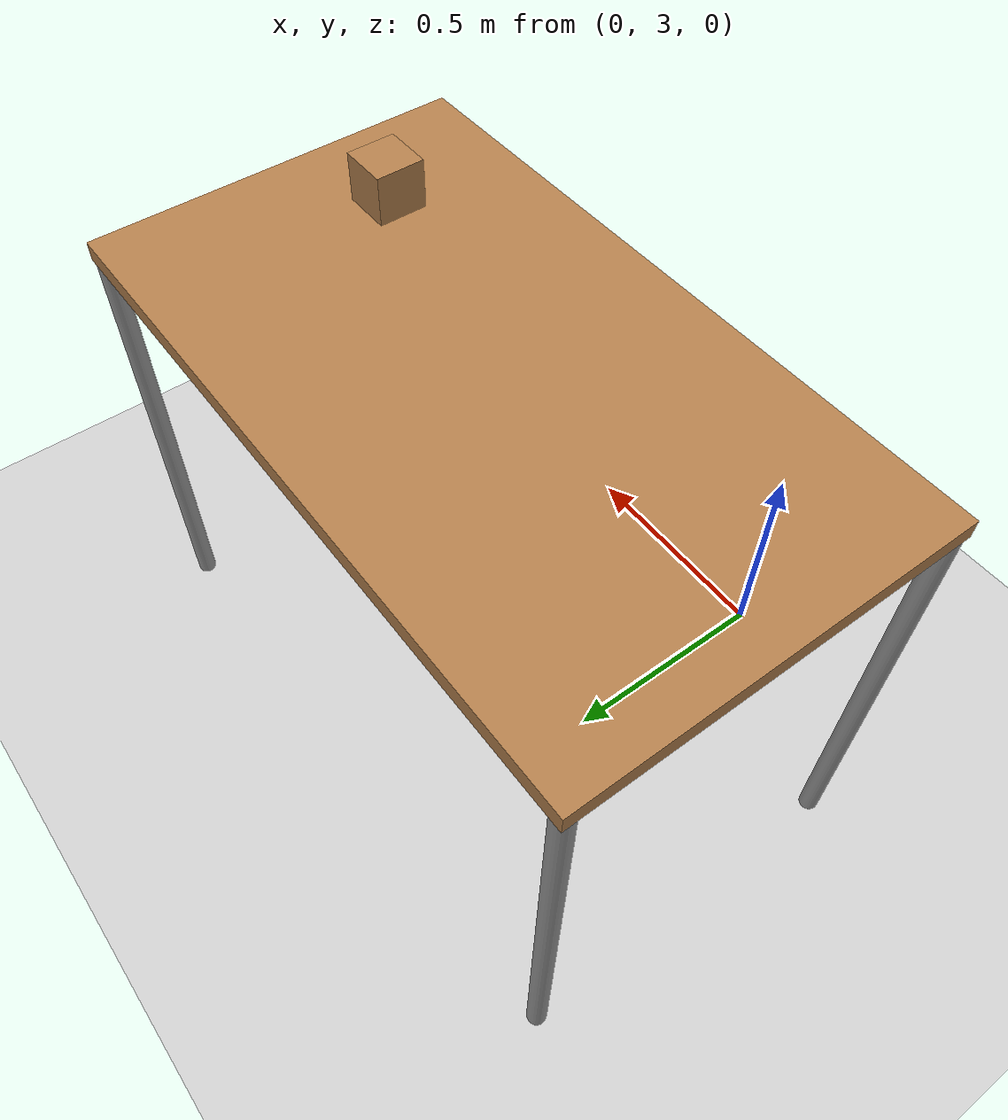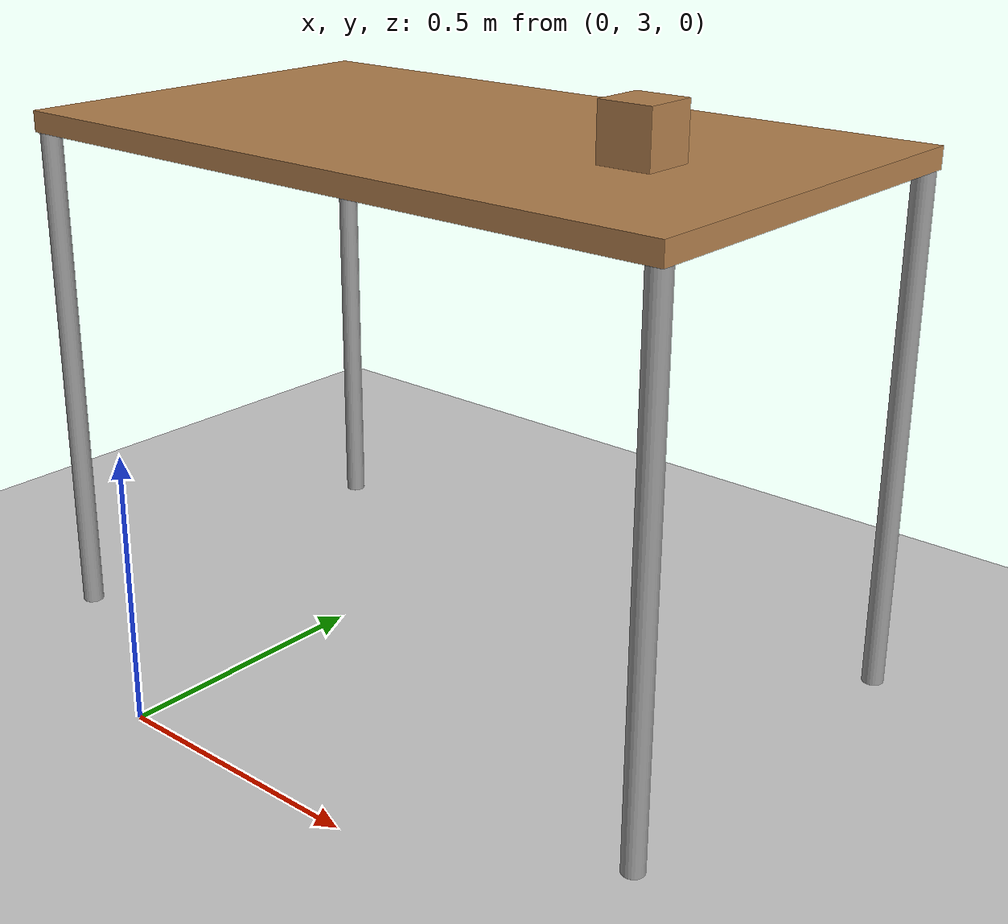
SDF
<sdf version="1.6">
 <world name="default">
  <light name="sun" type="directional">
   <pose>0 0 10 0 -0 0</pose>
   <diffuse>0.8 0.8 0.8 1</diffuse>
   <specular>0.1 0.1 0.1 1</specular>
   <attenuation>
    <range>1000</range>
    <constant>0.9</constant>
    <linear>0.01</linear>
    <quadratic>0.001</quadratic>
   </attenuation>
   <direction>-0.5 0.5 -1</direction>
  </light>
  <model name="ground_plane">
   <static>1</static>
   <link name="link">
    <collision name="collision">
     <geometry><plane><normal>0 0 1</normal><size>100 100</size></plane></geometry>
     <surface><friction><ode><mu>100</mu><mu2>50</mu2></ode></friction></surface>
    </collision>
    <visual name="visual">
     <cast_shadows>0</cast_shadows>
     <geometry><plane><normal>0 0 1</normal><size>100 100</size></plane></geometry>
     <material>
      <script><uri>file://media/materials/scripts/gazebo.material</uri><name>Gazebo/Grey</name></script>
     </material>
    </visual>
   </link>
  </model>
  <gravity>0 0 -9.8</gravity>
  <magnetic_field>6e-06 2.3e-05 -4.2e-05</magnetic_field>
  <atmosphere type="adiabatic"/>
  <physics name="default_physics" default="0" type="ode">
   <max_step_size>0.001</max_step_size>
   <real_time_factor>1</real_time_factor>
   <real_time_update_rate>1000</real_time_update_rate>
  </physics>
  <scene><ambient>0.4 0.4 0.4 1</ambient><background>0.7 0.7 0.7 1</background><shadows>1</shadows></scene>
  <spherical_coordinates>
   <surface_model>EARTH_WGS84</surface_model>
   <latitude_deg>0</latitude_deg>
   <longitude_deg>0</longitude_deg>
   <elevation>0</elevation>
   <heading_deg>0</heading_deg>
  </spherical_coordinates>
  <model name="table">
   <static>0</static>
   <link name="link">
    <collision name="surface">
     <pose>0 0 1 0 -0 0</pose>
     <geometry><box><size>1.5 0.8 0.03</size></box></geometry>
     <surface><friction><ode><mu>0.6</mu><mu2>0.6</mu2></ode></friction></surface>
    </collision>
    <visual name="visual1">
     <pose>0 0 1 0 -0 0</pose>
     <geometry><box><size>1.4 0.8 0.04</size></box></geometry>
     <material>
      <script><uri>file://media/materials/scripts/gazebo.material</uri><name>Gazebo/Wood</name></script>
     </material>
    </visual>
    <collision name="front_left_leg">
     <pose>0.68 0.38 0.5 0 -0 0</pose>
     <geometry><cylinder><radius>0.02</radius><length>1</length></cylinder></geometry>
    </collision>
    <visual name="front_left_leg">
     <pose>0.68 0.38 0.5 0 -0 0</pose>
     <geometry><cylinder><radius>0.02</radius><length>1</length></cylinder></geometry>
     <material>
      <script><uri>file://media/materials/scripts/gazebo.material</uri><name>Gazebo/Grey</name></script>
     </material>
    </visual>
    <collision name="front_right_leg">
     <pose>0.68 -0.38 0.5 0 -0 0</pose>
     <geometry><cylinder><radius>0.02</radius><length>1</length></cylinder></geometry>
    </collision>
    <visual name="front_right_leg">
     <pose>0.68 -0.38 0.5 0 -0 0</pose>
     <geometry><cylinder><radius>0.02</radius><length>1</length></cylinder></geometry>
     <material>
      <script><uri>file://media/materials/scripts/gazebo.material</uri><name>Gazebo/Grey</name></script>
     </material>
    </visual>
    <collision name="back_right_leg">
     <pose>-0.68 -0.38 0.5 0 -0 0</pose>
     <geometry><cylinder><radius>0.02</radius><length>1</length></cylinder></geometry>
    </collision>
    <visual name="back_right_leg">
     <pose>-0.68 -0.38 0.5 0 -0 0</pose>
     <geometry><cylinder><radius>0.02</radius><length>1</length></cylinder></geometry>
     <material>
      <script><uri>file://media/materials/scripts/gazebo.material</uri><name>Gazebo/Grey</name></script>
     </material>
    </visual>
    <collision name="back_left_leg">
     <pose>-0.68 0.38 0.5 0 -0 0</pose>
     <geometry><cylinder><radius>0.02</radius><length>1</length></cylinder></geometry>
    </collision>
    <visual name="back_left_leg">
     <pose>-0.68 0.38 0.5 0 -0 0</pose>
     <geometry><cylinder><radius>0.02</radius><length>1</length></cylinder></geometry>
     <material>
      <script><uri>file://media/materials/scripts/gazebo.material</uri><name>Gazebo/Grey</name></script>
     </material>
    </visual>
    <inertial>
     <inertia><ixx>1</ixx><ixy>0</ixy><ixz>0</ixz><iyy>1</iyy><iyz>0</iyz><izz>1</izz></inertia>
     <mass>1</mass>
    </inertial>
   </link>
   <pose>0.236699 3.60378 -0.019501 0.002105 0.000809 -0.000248</pose>
  </model>
  <model name="wood_cube_10cm">
   <link name="link">
    <pose>0 0 0.05 0 -0 0</pose>
    <inertial>
     <mass>0.5167</mass>
     <inertia>
      <ixx>0.000861167</ixx>
      <ixy>0</ixy>
      <ixz>0</ixz>
      <iyy>0.000861167</iyy>
      <iyz>0</iyz>
      <izz>0.000861167</izz>
     </inertia>
    </inertial>
    <collision name="collision">
     <geometry><box><size>0.1 0.1 0.1</size></box></geometry>
     <surface>
      <contact>
       <poissons_ratio>0.347</poissons_ratio>
       <elastic_modulus>8.8e+09</elastic_modulus>
       <ode><kp>100000</kp><kd>100</kd><max_vel>100</max_vel><min_depth>0.001</min_depth></ode>
      </contact>
      <friction>
       <torsional>
        <coefficient>1</coefficient>
        <use_patch_radius>0</use_patch_radius>
        <surface_radius>0.01</surface_radius>
       </torsional>
      </friction>
     </surface>
    </collision>
    <visual name="visual">
     <geometry><box><size>0.1 0.1 0.1</size></box></geometry>
     <material>
      <script><uri>file://media/materials/scripts/gazebo.material</uri><name>Gazebo/Wood</name></script>
     </material>
    </visual>
   </link>
   <pose>0.689159 3.49776 1.01499 2.1e-05 -1e-05 -0.000897</pose>
  </model>
 </world>
</sdf>
